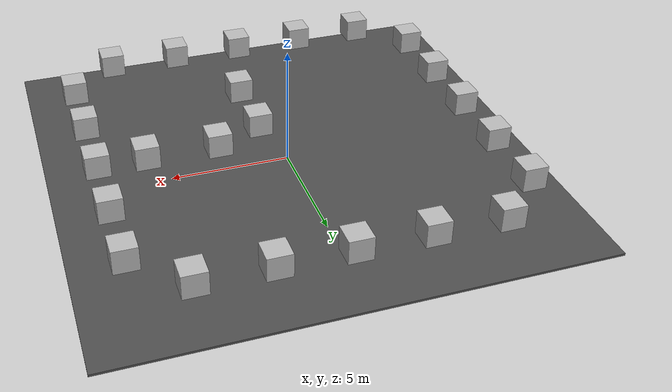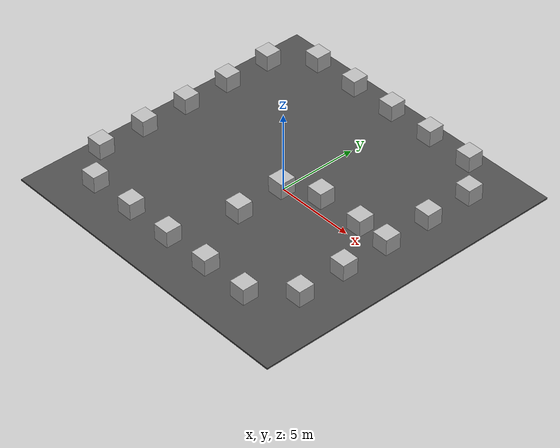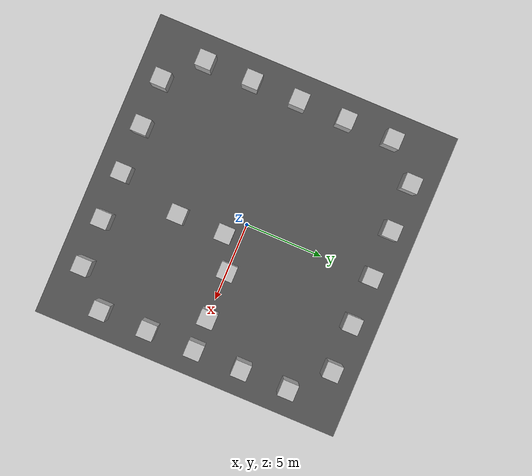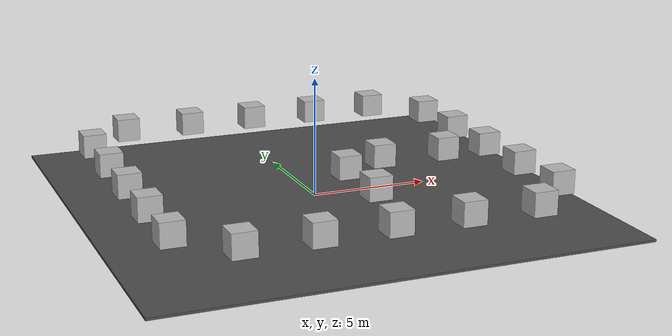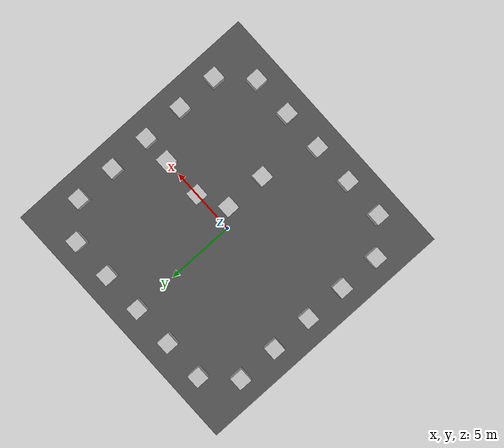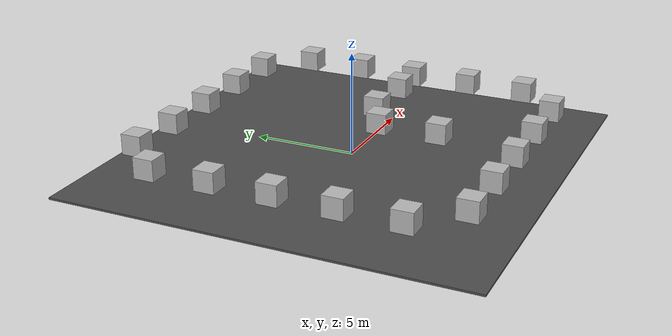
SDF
<sdf version="1.6">
 <world name="default">
  <light name="sun" type="directional">
   <pose>0 0 10 0 -0 0</pose>
   <diffuse>0.8 0.8 0.8 1</diffuse>
   <specular>0.2 0.2 0.2 1</specular>
   <attenuation>
    <range>1000</range>
    <constant>0.9</constant>
    <linear>0.01</linear>
    <quadratic>0.001</quadratic>
   </attenuation>
   <direction>-0.5 0.1 -0.9</direction>
  </light>
  <physics name="default_physics" default="0" type="ode">
   <ode>
    <solver>
     <type>quick</type>
     <iters>1000</iters>
     <sor>1.3</sor>
     <use_dynamic_moi_rescaling>0</use_dynamic_moi_rescaling>
    </solver>
    <constraints>
     <cfm>0</cfm>
     <erp>0.2</erp>
     <contact_max_correcting_vel>100</contact_max_correcting_vel>
     <contact_surface_layer>0.001</contact_surface_layer>
    </constraints>
   </ode>
   <max_step_size>0.01</max_step_size>
   <real_time_factor>1</real_time_factor>
   <real_time_update_rate>100</real_time_update_rate>
  </physics>
  <scene><ambient>0.4 0.4 0.4 1</ambient><background>0.7 0.7 0.7 1</background><shadows>1</shadows></scene>
  <spherical_coordinates>
   <surface_model>EARTH_WGS84</surface_model>
   <latitude_deg>0</latitude_deg>
   <longitude_deg>0</longitude_deg>
   <elevation>0</elevation>
   <heading_deg>0</heading_deg>
  </spherical_coordinates>
  <model name="asphalt_plane">
   <static>1</static>
   <link name="link">
    <collision name="collision"><geometry><box><size>20 20 0.1</size></box></geometry></collision>
    <visual name="visual">
     <cast_shadows>0</cast_shadows>
     <geometry><box><size>20 20 0.1</size></box></geometry>
     <material>
      <script>
       <uri>model://asphalt_plane/materials/scripts</uri>
       <uri>model://asphalt_plane/materials/textures</uri>
       <name>vrc/asphalt</name>
      </script>
     </material>
    </visual>
    <velocity_decay><linear>0</linear><angular>0</angular></velocity_decay>
   </link>
  </model>
  <model name="brick_box_3x1x3">
   <static>1</static>
   <link name="chassis">
    <pose>0 0 1.5 0 -0 0</pose>
    <collision name="collision"><geometry><box><size>3 1 3</size></box></geometry></collision>
    <visual name="visual">
     <geometry><mesh><uri>model://brick_box_3x1x3/meshes/simple_box.dae</uri><scale>1 1 1</scale></mesh></geometry>
     <material>
      <script>
       <uri>model://brick_box_3x1x3/materials/scripts</uri>
       <uri>model://brick_box_3x1x3/materials/textures</uri>
       <name>BrickBox/Diffuse</name>
      </script>
     </material>
    </visual>
    <velocity_decay><linear>0</linear><angular>0</angular></velocity_decay>
   </link>
   <pose>0 8 0 0 -0 0</pose>
  </model>
  <model name="brick_box_3x1x3_0">
   <static>1</static>
   <link name="chassis">
    <pose>0 0 1.5 0 -0 0</pose>
    <collision name="collision"><geometry><box><size>3 1 3</size></box></geometry></collision>
    <visual name="visual">
     <geometry><mesh><uri>model://brick_box_3x1x3/meshes/simple_box.dae</uri><scale>1 1 1</scale></mesh></geometry>
     <material>
      <script>
       <uri>model://brick_box_3x1x3/materials/scripts</uri>
       <uri>model://brick_box_3x1x3/materials/textures</uri>
       <name>BrickBox/Diffuse</name>
      </script>
     </material>
    </visual>
    <velocity_decay><linear>0</linear><angular>0</angular></velocity_decay>
   </link>
   <pose>3 8 0 0 -0 0</pose>
  </model>
  <model name="brick_box_3x1x3_1">
   <static>1</static>
   <link name="chassis">
    <pose>0 0 1.5 0 -0 0</pose>
    <collision name="collision"><geometry><box><size>3 1 3</size></box></geometry></collision>
    <visual name="visual">
     <geometry><mesh><uri>model://brick_box_3x1x3/meshes/simple_box.dae</uri><scale>1 1 1</scale></mesh></geometry>
     <material>
      <script>
       <uri>model://brick_box_3x1x3/materials/scripts</uri>
       <uri>model://brick_box_3x1x3/materials/textures</uri>
       <name>BrickBox/Diffuse</name>
      </script>
     </material>
    </visual>
    <velocity_decay><linear>0</linear><angular>0</angular></velocity_decay>
   </link>
   <pose>6 8 0 0 -0 0</pose>
  </model>
  <model name="brick_box_3x1x3_2">
   <static>1</static>
   <link name="chassis">
    <pose>0 0 1.5 0 -0 0</pose>
    <collision name="collision"><geometry><box><size>3 1 3</size></box></geometry></collision>
    <visual name="visual">
     <geometry><mesh><uri>model://brick_box_3x1x3/meshes/simple_box.dae</uri><scale>1 1 1</scale></mesh></geometry>
     <material>
      <script>
       <uri>model://brick_box_3x1x3/materials/scripts</uri>
       <uri>model://brick_box_3x1x3/materials/textures</uri>
       <name>BrickBox/Diffuse</name>
      </script>
     </material>
    </visual>
    <velocity_decay><linear>0</linear><angular>0</angular></velocity_decay>
   </link>
   <pose>-3 8 0 0 -0 0</pose>
  </model>
  <model name="brick_box_3x1x3_3">
   <static>1</static>
   <link name="chassis">
    <pose>0 0 1.5 0 -0 0</pose>
    <collision name="collision"><geometry><box><size>3 1 3</size></box></geometry></collision>
    <visual name="visual">
     <geometry><mesh><uri>model://brick_box_3x1x3/meshes/simple_box.dae</uri><scale>1 1 1</scale></mesh></geometry>
     <material>
      <script>
       <uri>model://brick_box_3x1x3/materials/scripts</uri>
       <uri>model://brick_box_3x1x3/materials/textures</uri>
       <name>BrickBox/Diffuse</name>
      </script>
     </material>
    </visual>
    <velocity_decay><linear>0</linear><angular>0</angular></velocity_decay>
   </link>
   <pose>-6 8 0 0 -0 0</pose>
  </model>
  <model name="brick_box_3x1x3_4">
   <static>1</static>
   <link name="chassis">
    <pose>0 0 1.5 0 -0 0</pose>
    <collision name="collision"><geometry><box><size>3 1 3</size></box></geometry></collision>
    <visual name="visual">
     <geometry><mesh><uri>model://brick_box_3x1x3/meshes/simple_box.dae</uri><scale>1 1 1</scale></mesh></geometry>
     <material>
      <script>
       <uri>model://brick_box_3x1x3/materials/scripts</uri>
       <uri>model://brick_box_3x1x3/materials/textures</uri>
       <name>BrickBox/Diffuse</name>
      </script>
     </material>
    </visual>
    <velocity_decay><linear>0</linear><angular>0</angular></velocity_decay>
   </link>
   <pose>6 -8 0 0 -0 0</pose>
  </model>
  <model name="brick_box_3x1x3_5">
   <static>1</static>
   <link name="chassis">
    <pose>0 0 1.5 0 -0 0</pose>
    <collision name="collision"><geometry><box><size>3 1 3</size></box></geometry></collision>
    <visual name="visual">
     <geometry><mesh><uri>model://brick_box_3x1x3/meshes/simple_box.dae</uri><scale>1 1 1</scale></mesh></geometry>
     <material>
      <script>
       <uri>model://brick_box_3x1x3/materials/scripts</uri>
       <uri>model://brick_box_3x1x3/materials/textures</uri>
       <name>BrickBox/Diffuse</name>
      </script>
     </material>
    </visual>
    <velocity_decay><linear>0</linear><angular>0</angular></velocity_decay>
   </link>
   <pose>3 -8 0 0 -0 0</pose>
  </model>
  <model name="brick_box_3x1x3_6">
   <static>1</static>
   <link name="chassis">
    <pose>0 0 1.5 0 -0 0</pose>
    <collision name="collision"><geometry><box><size>3 1 3</size></box></geometry></collision>
    <visual name="visual">
     <geometry><mesh><uri>model://brick_box_3x1x3/meshes/simple_box.dae</uri><scale>1 1 1</scale></mesh></geometry>
     <material>
      <script>
       <uri>model://brick_box_3x1x3/materials/scripts</uri>
       <uri>model://brick_box_3x1x3/materials/textures</uri>
       <name>BrickBox/Diffuse</name>
      </script>
     </material>
    </visual>
    <velocity_decay><linear>0</linear><angular>0</angular></velocity_decay>
   </link>
   <pose>0 -8 0 0 -0 0</pose>
  </model>
  <model name="brick_box_3x1x3_7">
   <static>1</static>
   <link name="chassis">
    <pose>0 0 1.5 0 -0 0</pose>
    <collision name="collision"><geometry><box><size>3 1 3</size></box></geometry></collision>
    <visual name="visual">
     <geometry><mesh><uri>model://brick_box_3x1x3/meshes/simple_box.dae</uri><scale>1 1 1</scale></mesh></geometry>
     <material>
      <script>
       <uri>model://brick_box_3x1x3/materials/scripts</uri>
       <uri>model://brick_box_3x1x3/materials/textures</uri>
       <name>BrickBox/Diffuse</name>
      </script>
     </material>
    </visual>
    <velocity_decay><linear>0</linear><angular>0</angular></velocity_decay>
   </link>
   <pose>-3 -8 0 0 -0 0</pose>
  </model>
  <model name="brick_box_3x1x3_8">
   <static>1</static>
   <link name="chassis">
    <pose>0 0 1.5 0 -0 0</pose>
    <collision name="collision"><geometry><box><size>3 1 3</size></box></geometry></collision>
    <visual name="visual">
     <geometry><mesh><uri>model://brick_box_3x1x3/meshes/simple_box.dae</uri><scale>1 1 1</scale></mesh></geometry>
     <material>
      <script>
       <uri>model://brick_box_3x1x3/materials/scripts</uri>
       <uri>model://brick_box_3x1x3/materials/textures</uri>
       <name>BrickBox/Diffuse</name>
      </script>
     </material>
    </visual>
    <velocity_decay><linear>0</linear><angular>0</angular></velocity_decay>
   </link>
   <pose>-6 -8 0 0 -0 0</pose>
  </model>
  <model name="brick_box_3x1x3_9">
   <static>1</static>
   <link name="chassis">
    <pose>0 0 1.5 0 -0 0</pose>
    <collision name="collision"><geometry><box><size>3 1 3</size></box></geometry></collision>
    <visual name="visual">
     <geometry><mesh><uri>model://brick_box_3x1x3/meshes/simple_box.dae</uri><scale>1 1 1</scale></mesh></geometry>
     <material>
      <script>
       <uri>model://brick_box_3x1x3/materials/scripts</uri>
       <uri>model://brick_box_3x1x3/materials/textures</uri>
       <name>BrickBox/Diffuse</name>
      </script>
     </material>
    </visual>
    <velocity_decay><linear>0</linear><angular>0</angular></velocity_decay>
   </link>
   <pose>-8 6 0 0 -0 1.57</pose>
  </model>
  <model name="brick_box_3x1x3_10">
   <static>1</static>
   <link name="chassis">
    <pose>0 0 1.5 0 -0 0</pose>
    <collision name="collision"><geometry><box><size>3 1 3</size></box></geometry></collision>
    <visual name="visual">
     <geometry><mesh><uri>model://brick_box_3x1x3/meshes/simple_box.dae</uri><scale>1 1 1</scale></mesh></geometry>
     <material>
      <script>
       <uri>model://brick_box_3x1x3/materials/scripts</uri>
       <uri>model://brick_box_3x1x3/materials/textures</uri>
       <name>BrickBox/Diffuse</name>
      </script>
     </material>
    </visual>
    <velocity_decay><linear>0</linear><angular>0</angular></velocity_decay>
   </link>
   <pose>-8 3 0 0 -0 1.57</pose>
  </model>
  <model name="brick_box_3x1x3_11">
   <static>1</static>
   <link name="chassis">
    <pose>0 0 1.5 0 -0 0</pose>
    <collision name="collision"><geometry><box><size>3 1 3</size></box></geometry></collision>
    <visual name="visual">
     <geometry><mesh><uri>model://brick_box_3x1x3/meshes/simple_box.dae</uri><scale>1 1 1</scale></mesh></geometry>
     <material>
      <script>
       <uri>model://brick_box_3x1x3/materials/scripts</uri>
       <uri>model://brick_box_3x1x3/materials/textures</uri>
       <name>BrickBox/Diffuse</name>
      </script>
     </material>
    </visual>
    <velocity_decay><linear>0</linear><angular>0</angular></velocity_decay>
   </link>
   <pose>-8 0 0 0 -0 1.57</pose>
  </model>
  <model name="brick_box_3x1x3_12">
   <static>1</static>
   <link name="chassis">
    <pose>0 0 1.5 0 -0 0</pose>
    <collision name="collision"><geometry><box><size>3 1 3</size></box></geometry></collision>
    <visual name="visual">
     <geometry><mesh><uri>model://brick_box_3x1x3/meshes/simple_box.dae</uri><scale>1 1 1</scale></mesh></geometry>
     <material>
      <script>
       <uri>model://brick_box_3x1x3/materials/scripts</uri>
       <uri>model://brick_box_3x1x3/materials/textures</uri>
       <name>BrickBox/Diffuse</name>
      </script>
     </material>
    </visual>
    <velocity_decay><linear>0</linear><angular>0</angular></velocity_decay>
   </link>
   <pose>-8 -3 0 0 -0 1.57</pose>
  </model>
  <model name="brick_box_3x1x3_13">
   <static>1</static>
   <link name="chassis">
    <pose>0 0 1.5 0 -0 0</pose>
    <collision name="collision"><geometry><box><size>3 1 3</size></box></geometry></collision>
    <visual name="visual">
     <geometry><mesh><uri>model://brick_box_3x1x3/meshes/simple_box.dae</uri><scale>1 1 1</scale></mesh></geometry>
     <material>
      <script>
       <uri>model://brick_box_3x1x3/materials/scripts</uri>
       <uri>model://brick_box_3x1x3/materials/textures</uri>
       <name>BrickBox/Diffuse</name>
      </script>
     </material>
    </visual>
    <velocity_decay><linear>0</linear><angular>0</angular></velocity_decay>
   </link>
   <pose>-8 -6 0 0 -0 1.57</pose>
  </model>
  <model name="brick_box_3x1x3_14">
   <static>1</static>
   <link name="chassis">
    <pose>0 0 1.5 0 -0 0</pose>
    <collision name="collision"><geometry><box><size>3 1 3</size></box></geometry></collision>
    <visual name="visual">
     <geometry><mesh><uri>model://brick_box_3x1x3/meshes/simple_box.dae</uri><scale>1 1 1</scale></mesh></geometry>
     <material>
      <script>
       <uri>model://brick_box_3x1x3/materials/scripts</uri>
       <uri>model://brick_box_3x1x3/materials/textures</uri>
       <name>BrickBox/Diffuse</name>
      </script>
     </material>
    </visual>
    <velocity_decay><linear>0</linear><angular>0</angular></velocity_decay>
   </link>
   <pose>8 6 0 0 -0 1.57</pose>
  </model>
  <model name="brick_box_3x1x3_15">
   <static>1</static>
   <link name="chassis">
    <pose>0 0 1.5 0 -0 0</pose>
    <collision name="collision"><geometry><box><size>3 1 3</size></box></geometry></collision>
    <visual name="visual">
     <geometry><mesh><uri>model://brick_box_3x1x3/meshes/simple_box.dae</uri><scale>1 1 1</scale></mesh></geometry>
     <material>
      <script>
       <uri>model://brick_box_3x1x3/materials/scripts</uri>
       <uri>model://brick_box_3x1x3/materials/textures</uri>
       <name>BrickBox/Diffuse</name>
      </script>
     </material>
    </visual>
    <velocity_decay><linear>0</linear><angular>0</angular></velocity_decay>
   </link>
   <pose>8 3 0 0 -0 1.57</pose>
  </model>
  <model name="brick_box_3x1x3_16">
   <static>1</static>
   <link name="chassis">
    <pose>0 0 1.5 0 -0 0</pose>
    <collision name="collision"><geometry><box><size>3 1 3</size></box></geometry></collision>
    <visual name="visual">
     <geometry><mesh><uri>model://brick_box_3x1x3/meshes/simple_box.dae</uri><scale>1 1 1</scale></mesh></geometry>
     <material>
      <script>
       <uri>model://brick_box_3x1x3/materials/scripts</uri>
       <uri>model://brick_box_3x1x3/materials/textures</uri>
       <name>BrickBox/Diffuse</name>
      </script>
     </material>
    </visual>
    <velocity_decay><linear>0</linear><angular>0</angular></velocity_decay>
   </link>
   <pose>8 0 0 0 -0 1.57</pose>
  </model>
  <model name="brick_box_3x1x3_17">
   <static>1</static>
   <link name="chassis">
    <pose>0 0 1.5 0 -0 0</pose>
    <collision name="collision"><geometry><box><size>3 1 3</size></box></geometry></collision>
    <visual name="visual">
     <geometry><mesh><uri>model://brick_box_3x1x3/meshes/simple_box.dae</uri><scale>1 1 1</scale></mesh></geometry>
     <material>
      <script>
       <uri>model://brick_box_3x1x3/materials/scripts</uri>
       <uri>model://brick_box_3x1x3/materials/textures</uri>
       <name>BrickBox/Diffuse</name>
      </script>
     </material>
    </visual>
    <velocity_decay><linear>0</linear><angular>0</angular></velocity_decay>
   </link>
   <pose>8 -3 0 0 -0 1.57</pose>
  </model>
  <model name="brick_box_3x1x3_18">
   <static>1</static>
   <link name="chassis">
    <pose>0 0 1.5 0 -0 0</pose>
    <collision name="collision"><geometry><box><size>3 1 3</size></box></geometry></collision>
    <visual name="visual">
     <geometry><mesh><uri>model://brick_box_3x1x3/meshes/simple_box.dae</uri><scale>1 1 1</scale></mesh></geometry>
     <material>
      <script>
       <uri>model://brick_box_3x1x3/materials/scripts</uri>
       <uri>model://brick_box_3x1x3/materials/textures</uri>
       <name>BrickBox/Diffuse</name>
      </script>
     </material>
    </visual>
    <velocity_decay><linear>0</linear><angular>0</angular></velocity_decay>
   </link>
   <pose>8 -6 0 0 -0 1.57</pose>
  </model>
  <model name="brick_box_3x1x3_19">
   <static>1</static>
   <link name="chassis">
    <pose>0 0 1.5 0 -0 0</pose>
    <collision name="collision"><geometry><box><size>3 1 3</size></box></geometry></collision>
    <visual name="visual">
     <geometry><mesh><uri>model://brick_box_3x1x3/meshes/simple_box.dae</uri><scale>1 1 1</scale></mesh></geometry>
     <material>
      <script>
       <uri>model://brick_box_3x1x3/materials/scripts</uri>
       <uri>model://brick_box_3x1x3/materials/textures</uri>
       <name>BrickBox/Diffuse</name>
      </script>
     </material>
    </visual>
    <velocity_decay><linear>0</linear><angular>0</angular></velocity_decay>
   </link>
   <pose>6 0 0 0 -0 0</pose>
  </model>
  <model name="brick_box_3x1x3_20">
   <static>1</static>
   <link name="chassis">
    <pose>0 0 1.5 0 -0 0</pose>
    <collision name="collision"><geometry><box><size>3 1 3</size></box></geometry></collision>
    <visual name="visual">
     <geometry><mesh><uri>model://brick_box_3x1x3/meshes/simple_box.dae</uri><scale>1 1 1</scale></mesh></geometry>
     <material>
      <script>
       <uri>model://brick_box_3x1x3/materials/scripts</uri>
       <uri>model://brick_box_3x1x3/materials/textures</uri>
       <name>BrickBox/Diffuse</name>
      </script>
     </material>
    </visual>
    <velocity_decay><linear>0</linear><angular>0</angular></velocity_decay>
   </link>
   <pose>3 0 0 0 -0 0</pose>
  </model>
  <model name="brick_box_3x1x3_21">
   <static>1</static>
   <link name="chassis">
    <pose>0 0 1.5 0 -0 0</pose>
    <collision name="collision"><geometry><box><size>3 1 3</size></box></geometry></collision>
    <visual name="visual">
     <geometry><mesh><uri>model://brick_box_3x1x3/meshes/simple_box.dae</uri><scale>1 1 1</scale></mesh></geometry>
     <material>
      <script>
       <uri>model://brick_box_3x1x3/materials/scripts</uri>
       <uri>model://brick_box_3x1x3/materials/textures</uri>
       <name>BrickBox/Diffuse</name>
      </script>
     </material>
    </visual>
    <velocity_decay><linear>0</linear><angular>0</angular></velocity_decay>
   </link>
   <pose>1 -1 0 0 -0 1.57</pose>
  </model>
  <model name="brick_box_3x1x3_22">
   <static>1</static>
   <link name="chassis">
    <pose>0 0 1.5 0 -0 0</pose>
    <collision name="collision"><geometry><box><size>3 1 3</size></box></geometry></collision>
    <visual name="visual">
     <geometry><mesh><uri>model://brick_box_3x1x3/meshes/simple_box.dae</uri><scale>1 1 1</scale></mesh></geometry>
     <material>
      <script>
       <uri>model://brick_box_3x1x3/materials/scripts</uri>
       <uri>model://brick_box_3x1x3/materials/textures</uri>
       <name>BrickBox/Diffuse</name>
      </script>
     </material>
    </visual>
    <velocity_decay><linear>0</linear><angular>0</angular></velocity_decay>
   </link>
   <pose>1 -4 0 0 -0 1.57</pose>
  </model>
  <gravity>0 0 -9.8</gravity>
  <magnetic_field>6e-06 2.3e-05 -4.2e-05</magnetic_field>
  <atmosphere type="adiabatic"/>
 </world>
</sdf>
